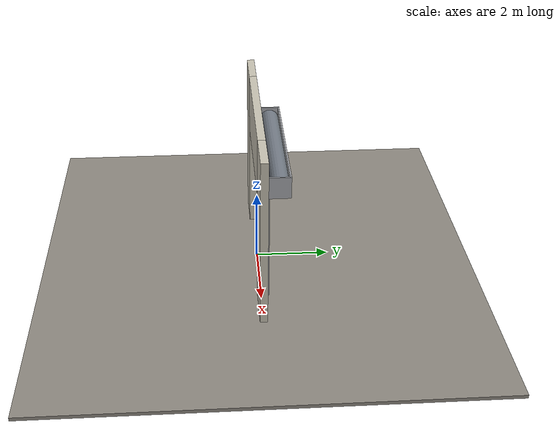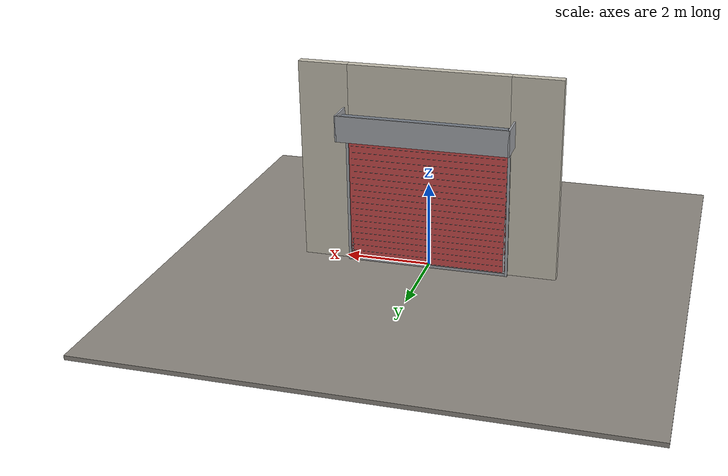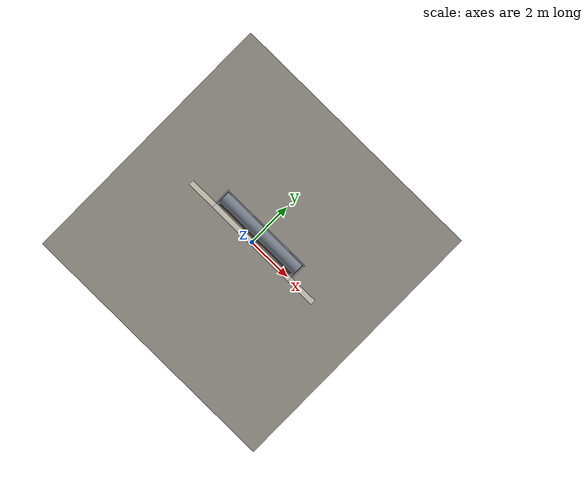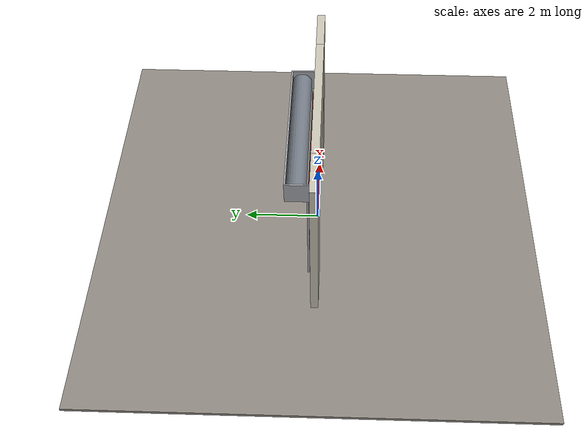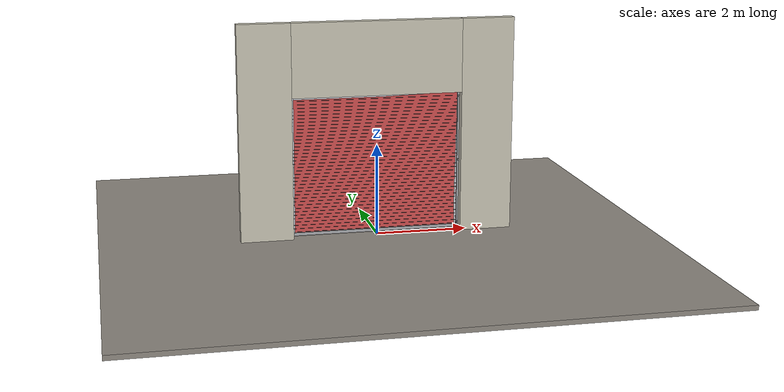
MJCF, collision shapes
<?xml version="1.0" ?>
<mujoco model="db0506_rollup_full">
  <compiler angle="radian" meshdir="../../hardware" texturedir="../../textures" autolimits="true" inertiafromgeom="false"/>
  <option timestep="0.002" integrator="implicitfast" cone="elliptic" impratio="10" noslip_iterations="3">
    <flag multiccd="enable"/>
  </option>
  <size memory="16M"/>
  <default>
    <geom condim="4" solref="0.005 1" solimp="0.95 0.99 0.001"/>
    <joint solreflimit="0.005 1" solimplimit="0.95 0.99 0.001"/>
    <tendon solreflimit="0.005 1"/>
    <equality solref="0.002 1"/>
  </default>
  <visual>
    <headlight ambient="0.4 0.4 0.4" diffuse="0.7 0.7 0.7" specular="0.2 0.2 0.2"/>
    <quality shadowsize="4096"/>
    <map znear="0.01" zfar="60"/>
  </visual>
  <asset>
    <mesh name="pull_bdc5e965ab" file="pull_bdc5e965ab.obj"/>
    <material name="mat_floor" rgba="0.55 0.53 0.5 1" specular="0.2" shininess="0.15" reflectance="0"/>
    <material name="mat_wall" rgba="0.78 0.76 0.7 1" specular="0.2" shininess="0.1" reflectance="0"/>
    <material name="mat_frame" rgba="0.45 0.48 0.52 1" specular="0.32" shininess="0.6" reflectance="0.08"/>
    <material name="mat_track" rgba="0.65 0.66 0.68 1" specular="0.74" shininess="0.5" reflectance="0.36"/>
    <material name="mat_curtain" rgba="0.8 0.81 0.83 1" specular="0.8" shininess="0.6" reflectance="0.4"/>
    <material name="mat_slat_line" rgba="0.25 0.25 0.25 1" specular="0.2" shininess="0.3" reflectance="0"/>
    <material name="mat_astragal" rgba="0.09 0.09 0.1 1" specular="0.2" shininess="0.1" reflectance="0"/>
    <material name="mat_op_black_matte_metal" rgba="0.05 0.05 0.05 1" specular="0.38" shininess="0.3" reflectance="0.12"/>
    <texture name="skybox" type="skybox" builtin="gradient" rgb1="0.6 0.7 0.85" rgb2="0.9 0.92 0.95" width="256" height="256"/>
  </asset>
  <worldbody>
    <light name="sun" pos="1.5 -2.5 4" dir="-0.3 0.5 -0.8" directional="true" diffuse="0.8 0.8 0.8" specular="0.3 0.3 0.3" castshadow="true"/>
    <light name="fill" pos="-1.5 2.5 3" dir="0.3 -0.5 -0.7" directional="true" diffuse="0.35 0.35 0.4" castshadow="false"/>
    <camera name="robot_view" pos="0 -4.103125 2.698875" xyaxes="1 0 0 0 0.26963 0.962964" fovy="52"/>
    <camera name="far_view" pos="0 4.103125 2.698875" xyaxes="-1 0 0 0 -0.26963 0.962964" fovy="52"/>
    <camera name="iso" pos="3.118375 -3.446625 3.355375" xyaxes="0.741536 0.670913 0 -0.242917 0.268487 0.932151" fovy="46"/>
    <camera name="detail_handle" pos="0.25 -0.97 0.51" xyaxes="0.975133 0.221621 0 -0.065674 0.288965 0.955084" fovy="38"/>
    <geom name="floor" type="box" size="6 6 0.05" pos="0 0 -0.05" material="mat_floor" group="0" contype="1" conaffinity="1" friction="0.8 0.005 0.0001" density="2400"/>
    <geom name="wall_left" type="box" size="0.5725 0.1 2.35" pos="-2.4275 0 2.35" material="mat_wall" group="0" contype="1" conaffinity="1" friction="0.6 0.005 0.0001" density="800"/>
    <geom name="wall_right" type="box" size="0.5725 0.1 2.35" pos="2.4275 0 2.35" material="mat_wall" group="0" contype="1" conaffinity="1" friction="0.6 0.005 0.0001" density="800"/>
    <geom name="wall_header" type="box" size="1.855 0.1 0.8" pos="0 0 3.9" material="mat_wall" group="0" contype="1" conaffinity="1" friction="0.6 0.005 0.0001" density="800"/>
    <geom name="guide_l" type="box" size="0.03 0.025 1.55" pos="-1.865 0.185 1.55" material="mat_track" group="0" contype="1" conaffinity="1" friction="0.6 0.005 0.0001" density="7850"/>
    <geom name="guide_r" type="box" size="0.03 0.025 1.55" pos="1.865 0.185 1.55" material="mat_track" group="0" contype="1" conaffinity="1" friction="0.6 0.005 0.0001" density="7850"/>
    <geom name="guide_bracket_l_0" type="box" size="0.028 0.034 0.02" pos="-1.865 0.13 0.12" material="mat_track" group="1" contype="0" conaffinity="0" density="7850"/>
    <geom name="guide_bracket_l_1" type="box" size="0.028 0.034 0.02" pos="-1.865 0.13 1.55" material="mat_track" group="1" contype="0" conaffinity="0" density="7850"/>
    <geom name="guide_bracket_l_2" type="box" size="0.028 0.034 0.02" pos="-1.865 0.13 2.98" material="mat_track" group="1" contype="0" conaffinity="0" density="7850"/>
    <geom name="guide_bracket_r_0" type="box" size="0.028 0.034 0.02" pos="1.865 0.13 0.12" material="mat_track" group="1" contype="0" conaffinity="0" density="7850"/>
    <geom name="guide_bracket_r_1" type="box" size="0.028 0.034 0.02" pos="1.865 0.13 1.55" material="mat_track" group="1" contype="0" conaffinity="0" density="7850"/>
    <geom name="guide_bracket_r_2" type="box" size="0.028 0.034 0.02" pos="1.865 0.13 2.98" material="mat_track" group="1" contype="0" conaffinity="0" density="7850"/>
    <geom name="coil_drum" type="cylinder" size="0.25 1.88" pos="0 0.463 3.4" quat="0.707107 0 0.707107 0" material="mat_frame" group="1" contype="0" conaffinity="0" density="300"/>
    <geom name="coil_shaft" type="cylinder" size="0.022 1.96" pos="0 0.463 3.4" quat="0.707107 0 0.707107 0" material="mat_track" group="1" contype="0" conaffinity="0" density="7850"/>
    <geom name="hood_front" type="box" size="1.95 0.02 0.3" pos="0 0.725 3.4" material="mat_track" group="1" contype="0" conaffinity="0" density="7850"/>
    <geom name="hood_end_l" type="box" size="0.02 0.3225 0.3" pos="-1.95 0.4225 3.4" material="mat_track" group="1" contype="0" conaffinity="0" density="7850"/>
    <geom name="hood_end_r" type="box" size="0.02 0.3225 0.3" pos="1.95 0.4225 3.4" material="mat_track" group="1" contype="0" conaffinity="0" density="7850"/>
    <site name="approach_point" pos="0 -2 0" quat="1 0 0 0" size="0.05" rgba="0.2 0.9 0.2 0.5" group="4"/>
    <site name="goal_point" pos="0 2 0" quat="1 0 0 0" size="0.05" rgba="0.2 0.9 0.2 0.5" group="4"/>
    <site name="door_plane_center" pos="0 0 1.55" quat="1 0 0 0" size="0.02" rgba="0.2 0.9 0.2 0.5" group="4"/>
    <body name="curtain" pos="0 0 0">
      <inertial pos="0 0.184835 1.397877" mass="128.96635" quat="0.707026 -0.707188 0 0" diaginertia="114.776968259 143.460366002 258.230352777"/>
      <joint name="curtain_slide" type="slide" axis="0 0 1" limited="true" range="0 0.003" damping="8.448318" frictionloss="131.531697" stiffness="113.86439" springref="10" armature="0.5"/>
      <geom name="curtain_slab_col" type="box" size="1.83 0.005 1.525" pos="0 0.185 1.535" material="mat_curtain" group="3" contype="1" conaffinity="1" rgba="0.8 0.3 0.3 0.25" friction="0.35 0.005 0.0001" density="1"/>
      <geom name="curtain_rail_b" type="box" size="1.83 0.005 0.0225" pos="0 0.185 0.0325" material="mat_curtain" group="1" contype="0" conaffinity="0" density="1"/>
      <geom name="curtain_rail_t" type="box" size="1.83 0.005 0.0225" pos="0 0.185 3.0375" material="mat_curtain" group="1" contype="0" conaffinity="0" density="1"/>
      <geom name="curtain_stile_h" type="box" size="0.0225 0.005 1.525" pos="-1.8075 0.185 1.535" material="mat_curtain" group="1" contype="0" conaffinity="0" density="1"/>
      <geom name="curtain_stile_l" type="box" size="0.0225 0.005 1.525" pos="1.8075 0.185 1.535" material="mat_curtain" group="1" contype="0" conaffinity="0" density="1"/>
      <geom name="curtain_grille_0" type="cylinder" size="0.006 1.785" pos="0 0.185 0.08625" quat="0.707107 0 0.707107 0" material="mat_curtain" group="1" contype="0" conaffinity="0" density="1"/>
      <geom name="curtain_grille_1" type="cylinder" size="0.006 1.785" pos="0 0.185 0.23875" quat="0.707107 0 0.707107 0" material="mat_curtain" group="1" contype="0" conaffinity="0" density="1"/>
      <geom name="curtain_grille_2" type="cylinder" size="0.006 1.785" pos="0 0.185 0.39125" quat="0.707107 0 0.707107 0" material="mat_curtain" group="1" contype="0" conaffinity="0" density="1"/>
      <geom name="curtain_grille_3" type="cylinder" size="0.006 1.785" pos="0 0.185 0.54375" quat="0.707107 0 0.707107 0" material="mat_curtain" group="1" contype="0" conaffinity="0" density="1"/>
      <geom name="curtain_grille_4" type="cylinder" size="0.006 1.785" pos="0 0.185 0.69625" quat="0.707107 0 0.707107 0" material="mat_curtain" group="1" contype="0" conaffinity="0" density="1"/>
      <geom name="curtain_grille_5" type="cylinder" size="0.006 1.785" pos="0 0.185 0.84875" quat="0.707107 0 0.707107 0" material="mat_curtain" group="1" contype="0" conaffinity="0" density="1"/>
      <geom name="curtain_grille_6" type="cylinder" size="0.006 1.785" pos="0 0.185 1.00125" quat="0.707107 0 0.707107 0" material="mat_curtain" group="1" contype="0" conaffinity="0" density="1"/>
      <geom name="curtain_grille_7" type="cylinder" size="0.006 1.785" pos="0 0.185 1.15375" quat="0.707107 0 0.707107 0" material="mat_curtain" group="1" contype="0" conaffinity="0" density="1"/>
      <geom name="curtain_grille_8" type="cylinder" size="0.006 1.785" pos="0 0.185 1.30625" quat="0.707107 0 0.707107 0" material="mat_curtain" group="1" contype="0" conaffinity="0" density="1"/>
      <geom name="curtain_grille_9" type="cylinder" size="0.006 1.785" pos="0 0.185 1.45875" quat="0.707107 0 0.707107 0" material="mat_curtain" group="1" contype="0" conaffinity="0" density="1"/>
      <geom name="curtain_grille_10" type="cylinder" size="0.006 1.785" pos="0 0.185 1.61125" quat="0.707107 0 0.707107 0" material="mat_curtain" group="1" contype="0" conaffinity="0" density="1"/>
      <geom name="curtain_grille_11" type="cylinder" size="0.006 1.785" pos="0 0.185 1.76375" quat="0.707107 0 0.707107 0" material="mat_curtain" group="1" contype="0" conaffinity="0" density="1"/>
      <geom name="curtain_grille_12" type="cylinder" size="0.006 1.785" pos="0 0.185 1.91625" quat="0.707107 0 0.707107 0" material="mat_curtain" group="1" contype="0" conaffinity="0" density="1"/>
      <geom name="curtain_grille_13" type="cylinder" size="0.006 1.785" pos="0 0.185 2.06875" quat="0.707107 0 0.707107 0" material="mat_curtain" group="1" contype="0" conaffinity="0" density="1"/>
      <geom name="curtain_grille_14" type="cylinder" size="0.006 1.785" pos="0 0.185 2.22125" quat="0.707107 0 0.707107 0" material="mat_curtain" group="1" contype="0" conaffinity="0" density="1"/>
      <geom name="curtain_grille_15" type="cylinder" size="0.006 1.785" pos="0 0.185 2.37375" quat="0.707107 0 0.707107 0" material="mat_curtain" group="1" contype="0" conaffinity="0" density="1"/>
      <geom name="curtain_grille_16" type="cylinder" size="0.006 1.785" pos="0 0.185 2.52625" quat="0.707107 0 0.707107 0" material="mat_curtain" group="1" contype="0" conaffinity="0" density="1"/>
      <geom name="curtain_grille_17" type="cylinder" size="0.006 1.785" pos="0 0.185 2.67875" quat="0.707107 0 0.707107 0" material="mat_curtain" group="1" contype="0" conaffinity="0" density="1"/>
      <geom name="curtain_grille_18" type="cylinder" size="0.006 1.785" pos="0 0.185 2.83125" quat="0.707107 0 0.707107 0" material="mat_curtain" group="1" contype="0" conaffinity="0" density="1"/>
      <geom name="curtain_grille_19" type="cylinder" size="0.006 1.785" pos="0 0.185 2.98375" quat="0.707107 0 0.707107 0" material="mat_curtain" group="1" contype="0" conaffinity="0" density="1"/>
      <geom name="slat_line_1" type="box" size="1.83 0.001 0.003" pos="0 0.179 0.08625" material="mat_slat_line" group="1" contype="0" conaffinity="0" density="1"/>
      <geom name="slat_line_2" type="box" size="1.83 0.001 0.003" pos="0 0.179 0.1625" material="mat_slat_line" group="1" contype="0" conaffinity="0" density="1"/>
      <geom name="slat_line_3" type="box" size="1.83 0.001 0.003" pos="0 0.179 0.23875" material="mat_slat_line" group="1" contype="0" conaffinity="0" density="1"/>
      <geom name="slat_line_4" type="box" size="1.83 0.001 0.003" pos="0 0.179 0.315" material="mat_slat_line" group="1" contype="0" conaffinity="0" density="1"/>
      <geom name="slat_line_5" type="box" size="1.83 0.001 0.003" pos="0 0.179 0.39125" material="mat_slat_line" group="1" contype="0" conaffinity="0" density="1"/>
      <geom name="slat_line_6" type="box" size="1.83 0.001 0.003" pos="0 0.179 0.4675" material="mat_slat_line" group="1" contype="0" conaffinity="0" density="1"/>
      <geom name="slat_line_7" type="box" size="1.83 0.001 0.003" pos="0 0.179 0.54375" material="mat_slat_line" group="1" contype="0" conaffinity="0" density="1"/>
      <geom name="slat_line_8" type="box" size="1.83 0.001 0.003" pos="0 0.179 0.62" material="mat_slat_line" group="1" contype="0" conaffinity="0" density="1"/>
      <geom name="slat_line_9" type="box" size="1.83 0.001 0.003" pos="0 0.179 0.69625" material="mat_slat_line" group="1" contype="0" conaffinity="0" density="1"/>
      <geom name="slat_line_10" type="box" size="1.83 0.001 0.003" pos="0 0.179 0.7725" material="mat_slat_line" group="1" contype="0" conaffinity="0" density="1"/>
      <geom name="slat_line_11" type="box" size="1.83 0.001 0.003" pos="0 0.179 0.84875" material="mat_slat_line" group="1" contype="0" conaffinity="0" density="1"/>
      <geom name="slat_line_12" type="box" size="1.83 0.001 0.003" pos="0 0.179 0.925" material="mat_slat_line" group="1" contype="0" conaffinity="0" density="1"/>
      <geom name="slat_line_13" type="box" size="1.83 0.001 0.003" pos="0 0.179 1.00125" material="mat_slat_line" group="1" contype="0" conaffinity="0" density="1"/>
      <geom name="slat_line_14" type="box" size="1.83 0.001 0.003" pos="0 0.179 1.0775" material="mat_slat_line" group="1" contype="0" conaffinity="0" density="1"/>
      <geom name="slat_line_15" type="box" size="1.83 0.001 0.003" pos="0 0.179 1.15375" material="mat_slat_line" group="1" contype="0" conaffinity="0" density="1"/>
      <geom name="slat_line_16" type="box" size="1.83 0.001 0.003" pos="0 0.179 1.23" material="mat_slat_line" group="1" contype="0" conaffinity="0" density="1"/>
      <geom name="slat_line_17" type="box" size="1.83 0.001 0.003" pos="0 0.179 1.30625" material="mat_slat_line" group="1" contype="0" conaffinity="0" density="1"/>
      <geom name="slat_line_18" type="box" size="1.83 0.001 0.003" pos="0 0.179 1.3825" material="mat_slat_line" group="1" contype="0" conaffinity="0" density="1"/>
      <geom name="slat_line_19" type="box" size="1.83 0.001 0.003" pos="0 0.179 1.45875" material="mat_slat_line" group="1" contype="0" conaffinity="0" density="1"/>
      <geom name="slat_line_20" type="box" size="1.83 0.001 0.003" pos="0 0.179 1.535" material="mat_slat_line" group="1" contype="0" conaffinity="0" density="1"/>
      <geom name="slat_line_21" type="box" size="1.83 0.001 0.003" pos="0 0.179 1.61125" material="mat_slat_line" group="1" contype="0" conaffinity="0" density="1"/>
      <geom name="slat_line_22" type="box" size="1.83 0.001 0.003" pos="0 0.179 1.6875" material="mat_slat_line" group="1" contype="0" conaffinity="0" density="1"/>
      <geom name="slat_line_23" type="box" size="1.83 0.001 0.003" pos="0 0.179 1.76375" material="mat_slat_line" group="1" contype="0" conaffinity="0" density="1"/>
      <geom name="slat_line_24" type="box" size="1.83 0.001 0.003" pos="0 0.179 1.84" material="mat_slat_line" group="1" contype="0" conaffinity="0" density="1"/>
      <geom name="slat_line_25" type="box" size="1.83 0.001 0.003" pos="0 0.179 1.91625" material="mat_slat_line" group="1" contype="0" conaffinity="0" density="1"/>
      <geom name="slat_line_26" type="box" size="1.83 0.001 0.003" pos="0 0.179 1.9925" material="mat_slat_line" group="1" contype="0" conaffinity="0" density="1"/>
      <geom name="slat_line_27" type="box" size="1.83 0.001 0.003" pos="0 0.179 2.06875" material="mat_slat_line" group="1" contype="0" conaffinity="0" density="1"/>
      <geom name="slat_line_28" type="box" size="1.83 0.001 0.003" pos="0 0.179 2.145" material="mat_slat_line" group="1" contype="0" conaffinity="0" density="1"/>
      <geom name="slat_line_29" type="box" size="1.83 0.001 0.003" pos="0 0.179 2.22125" material="mat_slat_line" group="1" contype="0" conaffinity="0" density="1"/>
      <geom name="slat_line_30" type="box" size="1.83 0.001 0.003" pos="0 0.179 2.2975" material="mat_slat_line" group="1" contype="0" conaffinity="0" density="1"/>
      <geom name="slat_line_31" type="box" size="1.83 0.001 0.003" pos="0 0.179 2.37375" material="mat_slat_line" group="1" contype="0" conaffinity="0" density="1"/>
      <geom name="slat_line_32" type="box" size="1.83 0.001 0.003" pos="0 0.179 2.45" material="mat_slat_line" group="1" contype="0" conaffinity="0" density="1"/>
      <geom name="slat_line_33" type="box" size="1.83 0.001 0.003" pos="0 0.179 2.52625" material="mat_slat_line" group="1" contype="0" conaffinity="0" density="1"/>
      <geom name="slat_line_34" type="box" size="1.83 0.001 0.003" pos="0 0.179 2.6025" material="mat_slat_line" group="1" contype="0" conaffinity="0" density="1"/>
      <geom name="slat_line_35" type="box" size="1.83 0.001 0.003" pos="0 0.179 2.67875" material="mat_slat_line" group="1" contype="0" conaffinity="0" density="1"/>
      <geom name="slat_line_36" type="box" size="1.83 0.001 0.003" pos="0 0.179 2.755" material="mat_slat_line" group="1" contype="0" conaffinity="0" density="1"/>
      <geom name="slat_line_37" type="box" size="1.83 0.001 0.003" pos="0 0.179 2.83125" material="mat_slat_line" group="1" contype="0" conaffinity="0" density="1"/>
      <geom name="slat_line_38" type="box" size="1.83 0.001 0.003" pos="0 0.179 2.9075" material="mat_slat_line" group="1" contype="0" conaffinity="0" density="1"/>
      <geom name="slat_line_39" type="box" size="1.83 0.001 0.003" pos="0 0.179 2.98375" material="mat_slat_line" group="1" contype="0" conaffinity="0" density="1"/>
      <geom name="bottom_bar" type="box" size="1.83 0.02 0.03" pos="0 0.185 0.042" material="mat_track" group="0" contype="1" conaffinity="1" friction="0.6 0.005 0.0001" density="7850"/>
      <geom name="bottom_astragal" type="box" size="1.83 0.015 0.006" pos="0 0.185 0.006" material="mat_astragal" group="0" contype="1" conaffinity="1" friction="0.6 0.005 0.0001" density="1100"/>
      <geom name="lift_handle_n" type="mesh" mesh="pull_bdc5e965ab" pos="0 0.18 0.16" quat="0.707107 0.707107 0 0" material="mat_op_black_matte_metal" group="1" contype="0" conaffinity="0" density="3000"/>
      <geom name="lift_handle_col_n" type="box" size="0.1 0.006 0.015" pos="0 0.13 0.16" material="mat_op_black_matte_metal" group="3" contype="1" conaffinity="1" rgba="0.8 0.3 0.3 0.25" friction="0.6 0.005 0.0001" density="3000"/>
      <site name="lift_handle_grip_n" pos="0 0.13 0.16" quat="1 0 0 0" size="0.012" rgba="0.2 0.9 0.2 0.5" group="4"/>
    </body>
  </worldbody>
  <sensor>
    <jointpos name="curtain_slide_pos" joint="curtain_slide"/>
    <jointvel name="curtain_slide_vel" joint="curtain_slide"/>
  </sensor>
</mujoco>
